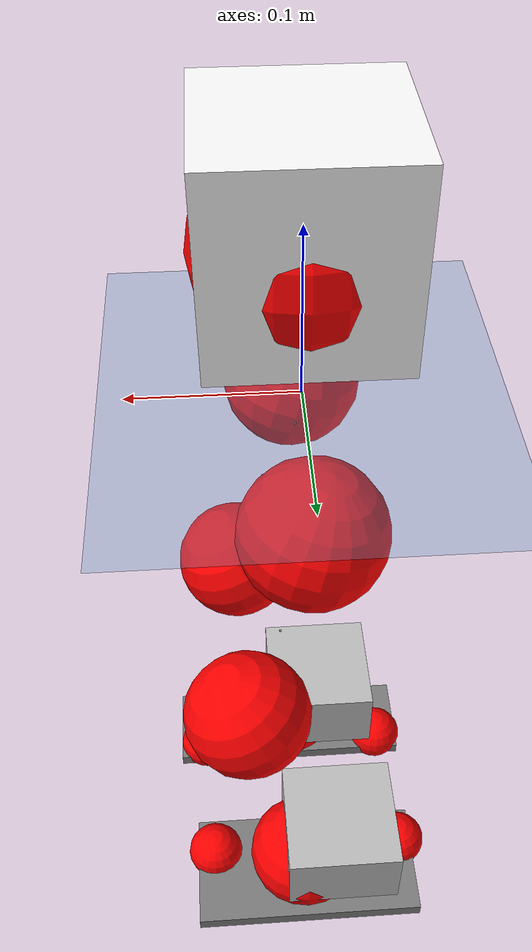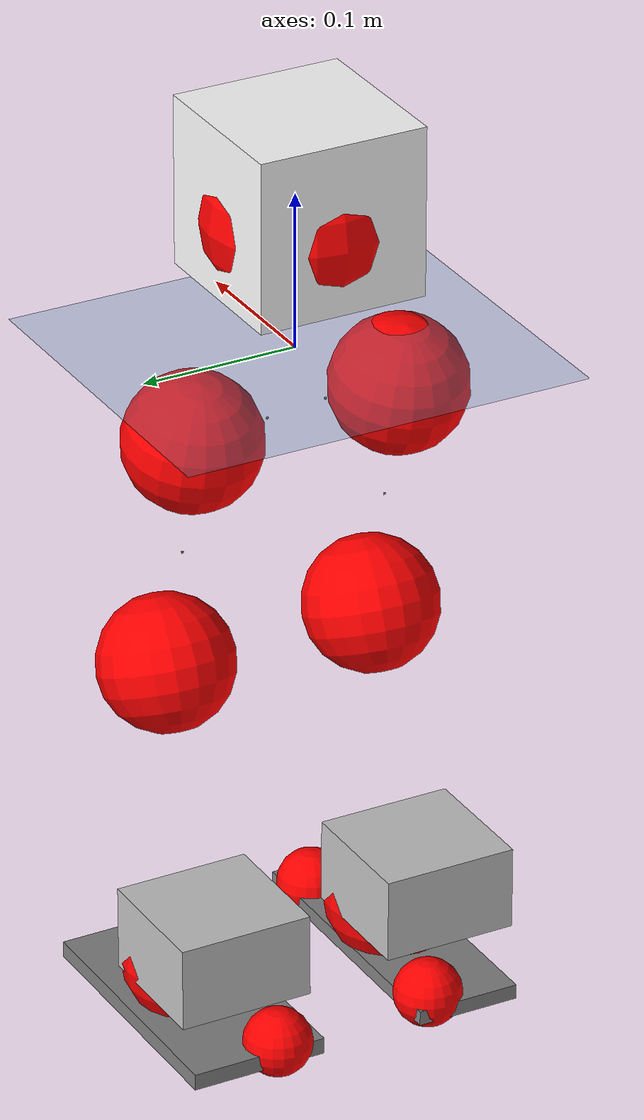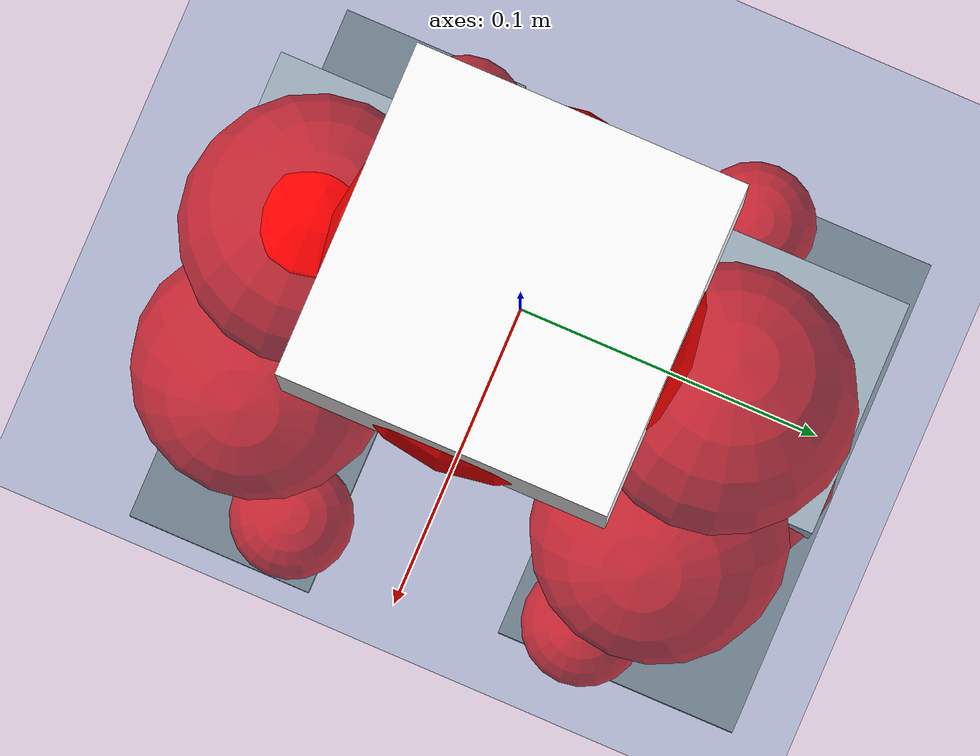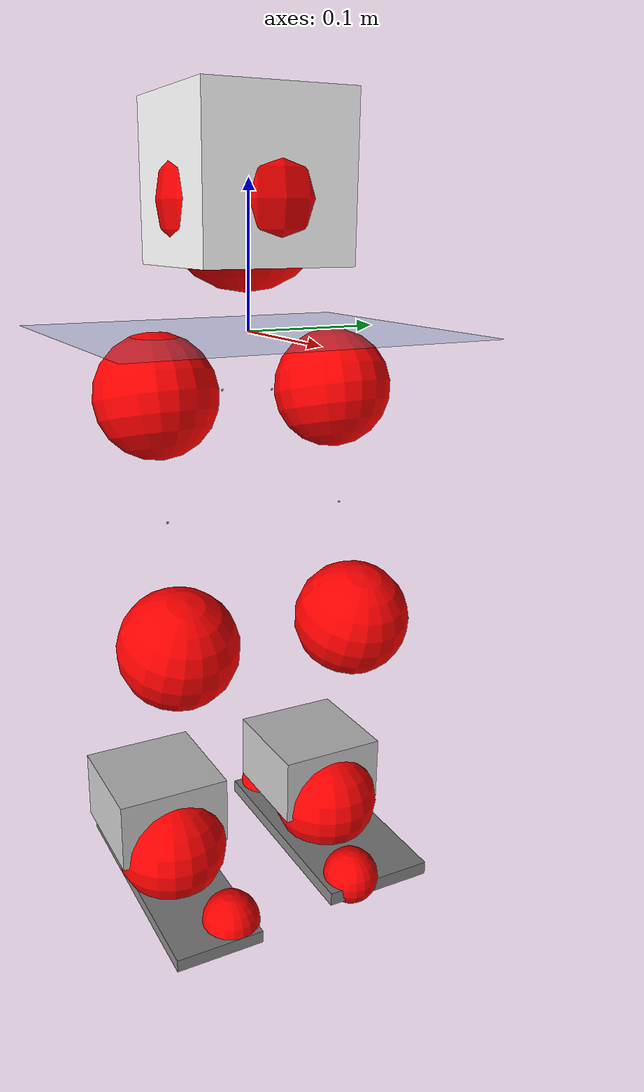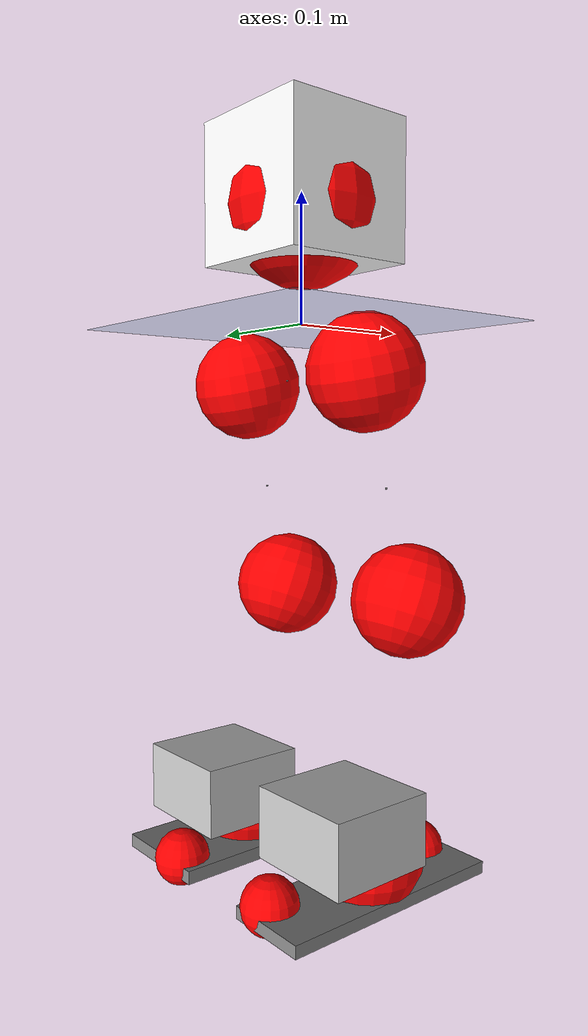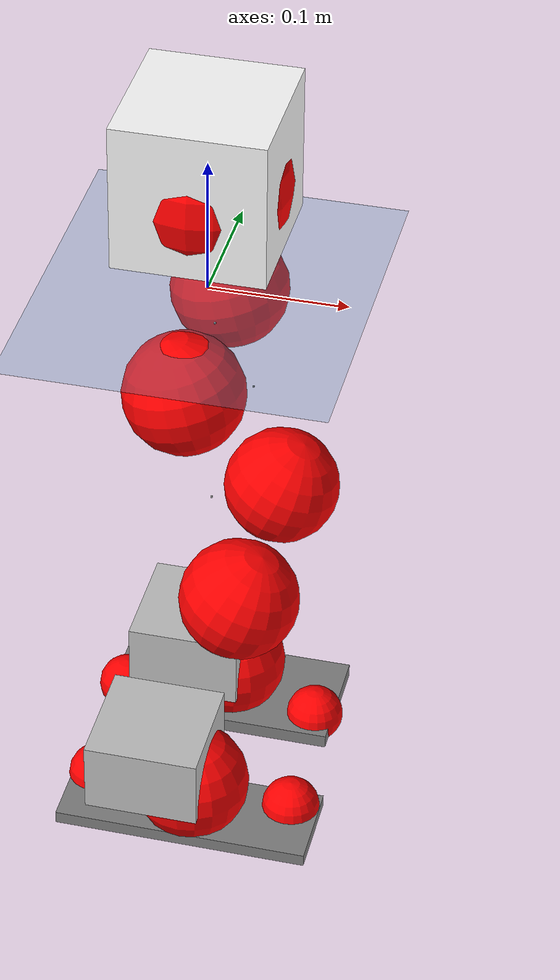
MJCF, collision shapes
<mujoco model="pi_12dof_release_v1">
  <compiler angle="radian" assetdir="assets" balanceinertia="true" inertiafromgeom="false"/>

  <option timestep="0.005" density="1.2" viscosity="2e-05"/>

  <size nkey="1"/>

  <visual>
    <quality shadowsize="8192"/>
    <map shadowclip="0.5"/>
  </visual>

  <default>
    <default class="/">
      <joint armature="0.01" damping="0.01" frictionloss="0.01"/>
      <geom contype="0" conaffinity="0" group="1" solref="-1000 -80"/>
      <site size="0.01 0.005 0.005" group="5"/>
      <general forcelimited="true" biastype="affine" gainprm="20" biasprm="0 -20 -0.5"/>
      <default class="foot">
        <geom size="0.0845 0.036 0.005" type="box" condim="6" group="4" priority="1" friction="0.9 0.2 0.2" solimp="0.015 1 0.005"/>
      </default>
      <default class="reward_collision_sphere">
        <geom group="5" rgba="1 0 0 1"/>
      </default>
    </default>
  </default>

  <asset>
    <texture type="skybox" colorspace="auto" name="//unnamed_texture_0" builtin="gradient" rgb1="0.95 0.95 0.95" rgb2="0.95 0.95 0.95" width="100" height="600"/>
    <texture type="2d" colorspace="auto" name="texplane" builtin="checker" rgb1="0.345 0.575 0.748" rgb2="0.345 0.575 0.748" markrgb="1 1 1" width="512" height="512"/>
    <material name="MatPlane" class="/" texture="texplane" texuniform="true" texrepeat="2 2" specular="0.9"/>
    <mesh name="baselink_1" class="/" file="baselink_1.STL"/>
    <mesh name="r_hip_pitch_link" class="/" file="r_hip_pitch_link.STL"/>
    <mesh name="r_hip_roll_link" class="/" file="r_hip_roll_link.STL"/>
    <mesh name="r_thigh_link" class="/" file="r_thigh_link.STL"/>
    <mesh name="r_calf_link" class="/" file="r_calf_link.STL"/>
    <mesh name="r_ankle_pitch_link" class="/" file="r_ankle_pitch_link.STL"/>
    <mesh name="r_ankle_roll_link" class="/" file="r_ankle_roll_link.STL"/>
    <mesh name="l_hip_pitch_link" class="/" file="l_hip_pitch_link.STL"/>
    <mesh name="l_hip_roll_link" class="/" file="l_hip_roll_link.STL"/>
    <mesh name="l_thigh_link" class="/" file="l_thigh_link.STL"/>
    <mesh name="l_calf_link" class="/" file="l_calf_link.STL"/>
    <mesh name="l_ankle_pitch_link" class="/" file="l_ankle_pitch_link.STL"/>
    <mesh name="l_ankle_roll_link" class="/" file="l_ankle_roll_link.STL"/>
  </asset>

  <worldbody>
    <geom name="floor" class="/" size="100 100 0.125" type="plane" group="0" material="MatPlane"/>
    <light name="toplight_shadow" class="/" pos="0 0 5" dir="0.0990148 0.0990148 -0.990148" type="directional" ambient="0.04 0.04 0.04" diffuse="0.55 0.55 0.55" specular="0.12 0.12 0.12"/>
    <light name="toplight_fill" class="/" pos="0 0 5" dir="0.0990148 0.0990148 -0.990148" type="directional" castshadow="false" ambient="0.04 0.04 0.04" diffuse="0.3 0.3 0.3" specular="0.08 0.08 0.08"/>
    <body name="trunk" pos="4.39317e-05 -0.00281333 -0.000737151" quat="1 -1.37131e-05 4.89781e-05 -2.74207e-05">
      <inertial pos="0.00293073 -0.00312441 0.0498712" quat="0.692781 0.00618273 0.00229764 0.721118" mass="2.71073" diaginertia="0.0163464 0.00520954 0.0120294"/>
      <joint name="//unnamed_joint_0" type="free"/>
      <geom name="//unnamed_geom_1" class="/" type="mesh" density="0" rgba="1 1 1 1" mesh="baselink_1"/>
      <geom name="//unnamed_geom_2" class="/" size="0.0542103 0.0542103 0.0542103" pos="0 0 0.0990051" type="box" rgba="1 1 1 1"/>
      <geom name="//unnamed_geom_3" class="reward_collision_sphere" size="0.0596314" pos="0 0 0.0866295"/>
      <site name="imu" class="/" pos="0.0139603 0.0108687 -0.0140593" size="0.0108421"/>
      <camera name="track" class="/" pos="0 -1.8012 0" quat="0.707107 0.707107 0 0" mode="trackcom"/>
      <camera name="ego_camera" class="/" pos="0.0835843 0 0.222761" quat="-0.5 -0.5 0.5 0.5"/>
      <body name="r_hip_pitch_link" pos="0.00210034 -0.018823 -0.0385677" quat="0.992303 0.000549945 -0.123833 -0.000890244">
        <inertial pos="0.00173806 -0.050499 0.00220716" quat="-0.0181291 0.705773 -0.0327321 0.707449" mass="0.45239" diaginertia="0.000186358 5.53548e-05 0.000240701"/>
        <joint name="r_hip_pitch_joint" class="/" pos="0 0 0" axis="0.000868855 -0.999999 -0.000655788" range="-1.75092 1.20678" armature="0.0110931" damping="0.0138482" frictionloss="0.0111122"/>
        <geom name="//unnamed_geom_4" class="/" type="mesh" density="0" rgba="0.75294 0.75294 0.75294 1" mesh="r_hip_pitch_link"/>
        <geom name="//unnamed_geom_5" class="/" size="0.000542103 0.000542103 0.000542103" type="box" rgba="0.75294 0.75294 0.75294 1"/>
        <body name="r_hip_roll_link" pos="-0.00130488 -0.0488576 -0.000738702" quat="0.999999 0.00103325 -0.000464237 0.000829126">
          <inertial pos="0.00138757 0.0023408 -0.0763786" quat="0.697993 -0.0765767 -0.0763178 0.707896" mass="0.494257" diaginertia="0.000568144 0.000164455 0.000372322"/>
          <joint name="r_hip_roll_joint" class="/" pos="0 0 0" axis="-0.999922 0.009816 0.00767078" range="-0.130552 0.553095" armature="0.00933623" damping="0.0166375" frictionloss="0.0110366"/>
          <geom name="//unnamed_geom_6" class="/" type="mesh" density="0" rgba="0.75294 0.75294 0.75294 1" mesh="r_hip_roll_link"/>
          <geom name="//unnamed_geom_7" class="/" size="0.000542103 0.000542103 0.000542103" type="box" rgba="0.75294 0.75294 0.75294 1"/>
          <geom name="//unnamed_geom_8" class="reward_collision_sphere" size="0.0433683"/>
          <body name="r_thigh_link" pos="-0.00131957 -0.00213422 -0.0862549" quat="0.999999 -0.000568945 0.000435024 0.000876306">
            <inertial pos="0.00310706 0.000939115 -0.0608434" quat="0.737326 0.675537 -0.000444675 -0.000160016" mass="0.145571" diaginertia="0.000207429 5.77809e-05 0.000163464"/>
            <joint name="r_thigh_joint" class="/" pos="0 0 0" axis="-0.00144506 0.00112034 -0.999998" range="-0.355345 0.590693" armature="0.0102001" damping="0.0031085" frictionloss="0.0110912"/>
            <geom name="//unnamed_geom_9" class="/" type="mesh" density="0" rgba="0.75294 0.75294 0.75294 1" mesh="r_thigh_link"/>
            <geom name="//unnamed_geom_10" class="/" size="0.000542103 0.000542103 0.000542103" type="box" rgba="0.75294 0.75294 0.75294 1"/>
            <body name="r_calf_link" pos="-0.000885358 -0.00278306 -0.0878527" quat="0.947655 5.95726e-05 0.319297 -1.31122e-06">
              <inertial pos="-0.0014775 -0.0014199 -0.0869774" quat="0.999983 -0.00226151 -0.000436529 0.00536938" mass="0.993577" diaginertia="0.00599774 0.00201108 0.000520247"/>
              <joint name="r_calf_joint" class="/" pos="0 0 0" axis="0.00920577 -0.999947 -0.00463594" range="-1.61494 0.686765" armature="0.0110786" damping="0.00785537" frictionloss="0.0117961"/>
              <geom name="//unnamed_geom_11" class="/" type="mesh" density="0" rgba="0.75294 0.75294 0.75294 1" mesh="r_calf_link"/>
              <geom name="//unnamed_geom_12" class="/" size="0.000542103 0.000542103 0.000542103" type="box" rgba="0.75294 0.75294 0.75294 1"/>
              <geom name="//unnamed_geom_13" class="reward_collision_sphere" size="0.0433683"/>
              <body name="r_ankle_pitch_link" pos="0.00302377 0.00214513 -0.170776" quat="0.980011 -0.000573109 -0.19894 -0.000260051">
                <inertial pos="0.00346773 0.00126459 0.000454867" quat="-0.00197347 0.71445 0.00113666 0.699683" mass="0.239956" diaginertia="0.000543342 0.000136114 0.000356143"/>
                <joint name="r_ankle_pitch_joint" class="/" pos="0 0 0" axis="0.00639666 -0.999922 0.0106894" range="-1.26366 0.550034" armature="0.0107901" damping="0.0217301" frictionloss="0.0104694"/>
                <geom name="//unnamed_geom_14" class="/" type="mesh" density="0" rgba="0.75294 0.75294 0.75294 1" mesh="r_ankle_pitch_link"/>
                <geom name="//unnamed_geom_15" class="/" size="0.0422841 0.0433683 0.0271052" type="box" rgba="0.75294 0.75294 0.75294 1"/>
                <body name="r_ankle_roll_link" pos="0.0829856 0.0015909 -0.00209118" quat="0.999999 0.000749845 0.000473314 -0.0010544">
                  <inertial pos="-0.0254569 0.000580655 -0.0153304" quat="0.561727 0.440035 0.428788 0.554051" mass="0.654035" diaginertia="0.00192464 0.00060738 0.000822652"/>
                  <joint name="r_ankle_roll_joint" class="/" pos="0 0 0" axis="-1 -0.00010931 -0.000549667" range="-0.193656 0.160812" armature="0.0107871" damping="0.00602458" frictionloss="0.00983236"/>
                  <geom name="//unnamed_geom_16" class="/" type="mesh" density="0" rgba="0.75294 0.75294 0.75294 1" mesh="r_ankle_roll_link"/>
                  <geom name="//unnamed_geom_17" class="/" type="mesh" rgba="0.75294 0.75294 0.75294 1" mesh="r_ankle_roll_link"/>
                  <geom name="right_foot" class="foot" size="0.0952208 0.0336437 0.00477216" pos="-0.0568373 0 -0.0544528"/>
                  <geom name="//unnamed_geom_19" class="reward_collision_sphere" size="0.0433683" pos="-0.0557229 0 -0.0247513"/>
                  <geom name="//unnamed_geom_20" class="reward_collision_sphere" size="0.0216841" pos="0.0167169 0.018012 -0.0495025"/>
                  <geom name="//unnamed_geom_21" class="reward_collision_sphere" size="0.0216841" pos="-0.133735 0.018012 -0.0495025"/>
                  <site name="right_foot" class="foot" pos="-0.0568373 0 -0.0544528" size="0.0108421"/>
                </body>
              </body>
            </body>
          </body>
        </body>
      </body>
      <body name="l_hip_pitch_link" pos="0.00035601 0.021083 -0.0412588" quat="0.99221 5.69875e-05 -0.124579 -0.000171659">
        <inertial pos="0.00166331 0.0459076 0.00149246" quat="-0.0386523 0.705583 0.0299525 0.706939" mass="0.503476" diaginertia="0.00022295 6.30999e-05 0.000295973"/>
        <joint name="l_hip_pitch_joint" class="/" pos="0 0 0" axis="-0.000452081 1 0.000480795" stiffness="0.010305" range="-1.25356 1.74544" armature="0.0107962" damping="0" frictionloss="0.0122611"/>
        <geom name="//unnamed_geom_22" class="/" type="mesh" density="0" rgba="0.75294 0.75294 0.75294 1" mesh="l_hip_pitch_link"/>
        <geom name="//unnamed_geom_23" class="/" size="0.000542103 0.000542103 0.000542103" type="box" rgba="0.75294 0.75294 0.75294 1"/>
        <body name="l_hip_roll_link" pos="-0.00225859 0.0505712 -0.00196258" quat="1 -9.93369e-05 -1.17386e-05 0.000126234">
          <inertial pos="-0.00316261 0.000750553 -0.0777152" quat="0.704788 -0.0699344 -0.0709885 0.702384" mass="0.511258" diaginertia="0.000580598 0.000168337 0.000379946"/>
          <joint name="l_hip_roll_joint" class="/" pos="0 0 0" axis="-0.999921 0.0118334 0.00431948" stiffness="0.00146741" range="-0.549469 0.118027" armature="0.0123553" damping="0.00170316" frictionloss="0.0112405"/>
          <geom name="//unnamed_geom_24" class="/" type="mesh" density="0" rgba="0.75294 0.75294 0.75294 1" mesh="l_hip_roll_link"/>
          <geom name="//unnamed_geom_25" class="/" size="0.000542103 0.000542103 0.000542103" type="box" rgba="0.75294 0.75294 0.75294 1"/>
          <geom name="//unnamed_geom_26" class="reward_collision_sphere" size="0.0433683"/>
          <body name="l_thigh_link" pos="-0.00259388 -0.00216834 -0.0850046" quat="1 8.1902e-05 0.000123692 0.000192949">
            <inertial pos="0.000142835 -0.00125306 -0.0579977" quat="0.675586 0.737281 0.00052676 5.51205e-05" mass="0.152295" diaginertia="0.000228698 5.78376e-05 0.000172748"/>
            <joint name="l_thigh_joint" class="/" pos="0 0 0" axis="2.89591e-05 -0.000445583 -1" range="-0.621078 0.293413" armature="0.00946384" damping="0.0116995" frictionloss="0.0109876"/>
            <geom name="//unnamed_geom_27" class="/" type="mesh" density="0" rgba="0.75294 0.75294 0.75294 1" mesh="l_thigh_link"/>
            <geom name="//unnamed_geom_28" class="/" size="0.000542103 0.000542103 0.000542103" type="box" rgba="0.75294 0.75294 0.75294 1"/>
            <body name="l_calf_link" pos="0.000540286 5.86826e-05 -0.0887207" quat="0.947809 -0.000289693 0.318836 0.00121467">
              <inertial pos="0.000347579 0.00572167 -0.0893917" quat="0.999967 0.00497263 0.000111988 0.00649" mass="1.06632" diaginertia="0.0064372 0.00214995 0.000537039"/>
              <joint name="l_calf_joint" class="/" pos="0 0 0" axis="0.0117952 0.999888 -0.00918026" range="-0.66347 1.6345" armature="0.0108363" damping="0.00657785" frictionloss="0.0111176"/>
              <geom name="//unnamed_geom_29" class="/" type="mesh" density="0" rgba="0.75294 0.75294 0.75294 1" mesh="l_calf_link"/>
              <geom name="//unnamed_geom_30" class="/" size="0.000542103 0.000542103 0.000542103" type="box" rgba="0.75294 0.75294 0.75294 1"/>
              <geom name="//unnamed_geom_31" class="reward_collision_sphere" size="0.0433683"/>
              <body name="l_ankle_pitch_link" pos="0.000129082 0.003988 -0.172858" quat="0.980186 -0.0011415 -0.198077 -0.000173759">
                <inertial pos="0.00542463 -0.00352945 0.00211977" quat="-0.000563272 0.708502 0.00496761 0.705691" mass="0.217698" diaginertia="0.000509204 0.000128113 0.000338048"/>
                <joint name="l_ankle_pitch_joint" class="/" pos="0 0 0" axis="2.23386e-05 0.999991 0.00417799" range="-0.562845 1.35565" armature="0.0103487" damping="0.00528848" frictionloss="0.0108906"/>
                <geom name="//unnamed_geom_32" class="/" type="mesh" density="0" rgba="0.75294 0.75294 0.75294 1" mesh="l_ankle_pitch_link"/>
                <geom name="//unnamed_geom_33" class="/" size="0.0422841 0.0433683 0.0271052" type="box" rgba="0.75294 0.75294 0.75294 1"/>
                <body name="l_ankle_roll_link" pos="0.0823933 0.00161832 0.0016417" quat="1 0.000362868 0.000146461 -0.000737529">
                  <inertial pos="-0.0248197 -9.03157e-05 -0.018191" quat="0.562472 0.42752 0.434434 0.558677" mass="0.66813" diaginertia="0.0020209 0.000615246 0.000818705"/>
                  <joint name="l_ankle_roll_joint" class="/" pos="0 0 0" axis="-0.999949 0.000556967 -0.0101244" range="-0.10992 0.0974377" armature="0.0121028" damping="0.0231953" frictionloss="0.00934282"/>
                  <geom name="//unnamed_geom_34" class="/" type="mesh" density="0" rgba="0.75294 0.75294 0.75294 1" mesh="l_ankle_roll_link"/>
                  <geom name="//unnamed_geom_35" class="/" type="mesh" rgba="0.75294 0.75294 0.75294 1" mesh="l_ankle_roll_link"/>
                  <geom name="left_foot" class="foot" size="0.0877272 0.0439516 0.00527233" pos="-0.0568373 0 -0.0544528"/>
                  <geom name="//unnamed_geom_37" class="reward_collision_sphere" size="0.0433683" pos="-0.0557229 0 -0.0247513"/>
                  <geom name="//unnamed_geom_38" class="reward_collision_sphere" size="0.0216841" pos="0.0167169 -0.018012 -0.0495025"/>
                  <geom name="//unnamed_geom_39" class="reward_collision_sphere" size="0.0216841" pos="-0.133735 -0.018012 -0.0495025"/>
                  <site name="left_foot" class="foot" pos="-0.0568373 0 -0.0544528" size="0.0108421"/>
                </body>
              </body>
            </body>
          </body>
        </body>
      </body>
    </body>
  </worldbody>

  <contact>
    <pair class="/" geom1="floor" geom2="right_foot" name="//unnamed_contact_1"/>
    <pair class="/" geom1="floor" geom2="left_foot" name="//unnamed_contact_0"/>
  </contact>

  <actuator>
    <general name="r_hip_pitch_joint" class="/" joint="r_hip_pitch_joint" forcerange="-23.0983 23.0983" gainprm="20.4888" biasprm="0 -20.4888 -0.549559"/>
    <general name="r_hip_roll_joint" class="/" joint="r_hip_roll_joint" forcerange="-22.599 22.599" gainprm="20.4888" biasprm="0 -20.4888 -0.549559"/>
    <general name="r_thigh_joint" class="/" joint="r_thigh_joint" forcerange="-25.0965 25.0965" gainprm="20.4888" biasprm="0 -20.4888 -0.549559"/>
    <general name="r_calf_joint" class="/" joint="r_calf_joint" forcerange="-20.4453 20.4453" gainprm="20.4888" biasprm="0 -20.4888 -0.549559"/>
    <general name="r_ankle_pitch_joint" class="/" joint="r_ankle_pitch_joint" forcerange="-24.8689 24.8689" gainprm="20.4888" biasprm="0 -20.4888 -0.549559"/>
    <general name="r_ankle_roll_joint" class="/" joint="r_ankle_roll_joint" forcerange="-24.8636 24.8636" gainprm="20.4888" biasprm="0 -20.4888 -0.549559"/>
    <general name="l_hip_pitch_joint" class="/" joint="l_hip_pitch_joint" forcerange="-24.3316 24.3316" gainprm="20.4888" biasprm="0 -20.4888 -0.549559"/>
    <general name="l_hip_roll_joint" class="/" joint="l_hip_roll_joint" forcerange="-20.5535 20.5535" gainprm="20.4888" biasprm="0 -20.4888 -0.549559"/>
    <general name="l_thigh_joint" class="/" joint="l_thigh_joint" forcerange="-22.6799 22.6799" gainprm="20.4888" biasprm="0 -20.4888 -0.549559"/>
    <general name="l_calf_joint" class="/" joint="l_calf_joint" forcerange="-24.8429 24.8429" gainprm="20.4888" biasprm="0 -20.4888 -0.549559"/>
    <general name="l_ankle_pitch_joint" class="/" joint="l_ankle_pitch_joint" forcerange="-24.8423 24.8423" gainprm="20.4888" biasprm="0 -20.4888 -0.549559"/>
    <general name="l_ankle_roll_joint" class="/" joint="l_ankle_roll_joint" forcerange="-24.9584 24.9584" gainprm="20.4888" biasprm="0 -20.4888 -0.549559"/>
  </actuator>

  <sensor>
    <gyro site="imu" name="imu_angular_velocity"/>
    <velocimeter site="imu" name="imu_linear_velocity"/>
    <framelinvel objtype="site" objname="left_foot" name="left_foot_global_linear_velocity"/>
    <framelinvel objtype="site" objname="right_foot" name="right_foot_global_linear_velocity"/>
  </sensor>

  <keyframe>
    <key name="home" qpos="0 0 0.291 1 0 0 0 0.4 0 0 -0.8 0.4 0 -0.4 0 0 0.8 -0.4 0"/>
  </keyframe>
</mujoco>
